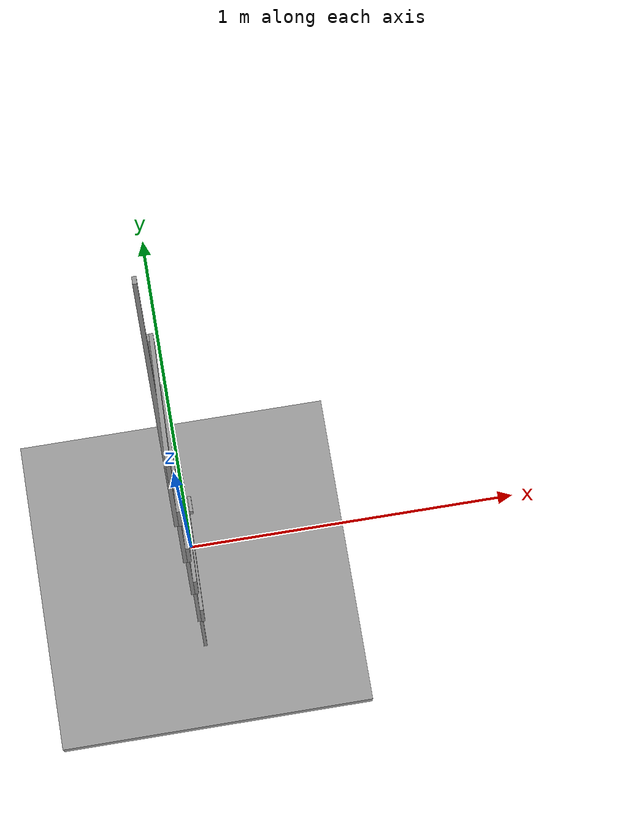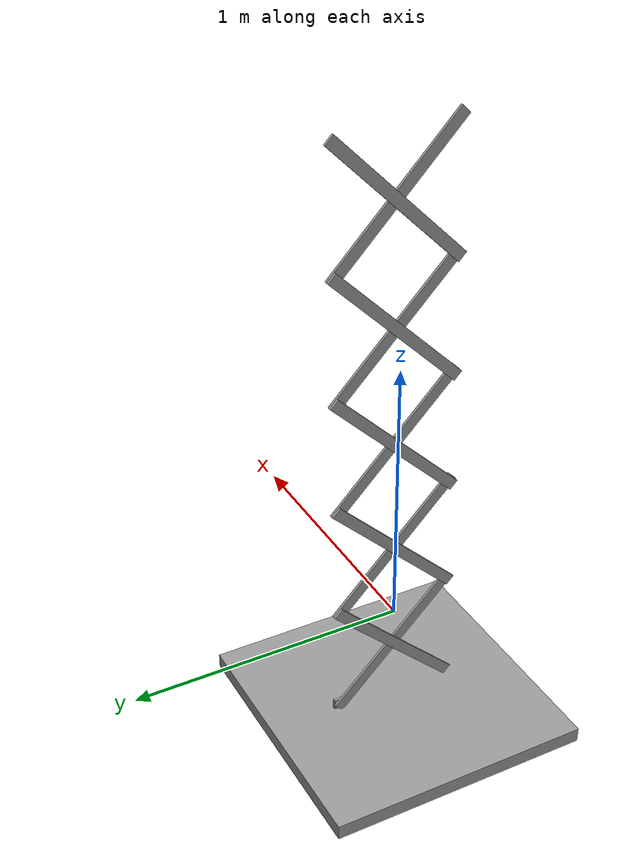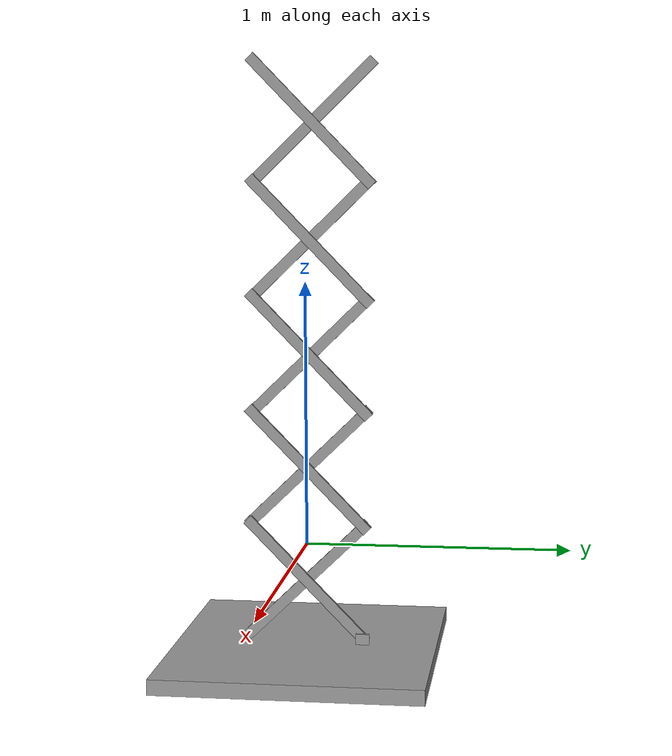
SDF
<?xml version='1.0'?>
<sdf version='1.6'>
  <model name='Robordion_leg_1'>
    <link name='link_0'>
      <pose frame=''>-0.007203 -0.002325 -0.144647 0.77 -0 0</pose>
      <inertial>
        <mass>0.00028808</mass>
        <inertia>
          <ixx>1.032e-05</ixx>
          <ixy>0</ixy>
          <ixz>0</ixz>
          <iyy>4e-08</iyy>
          <iyz>0</iyz>
          <izz>1.028e-05</izz>
        </inertia>
        <pose frame=''>0 0 0 0 -0 0</pose>
      </inertial>
      <self_collide>0</self_collide>
      <kinematic>0</kinematic>
      <visual name='visual'>
        <pose frame=''>0 0 0 0 -0 0</pose>
        <geometry>
          <box>
            <size>0.010804 0.654301 0.040827</size>
          </box>
        </geometry>
        <material>
          <lighting>1</lighting>
          <script>
            <uri>file://media/materials/scripts/gazebo.material</uri>
            <name>Gazebo/Grey</name>
          </script>
          <ambient>0.3 0.3 0.3 1</ambient>
          <diffuse>0.7 0.7 0.7 1</diffuse>
          <specular>0.01 0.01 0.01 1</specular>
          <emissive>0 0 0 1</emissive>
          <shader type='vertex'>
            <normal_map>__default__</normal_map>
          </shader>
        </material>
        <cast_shadows>1</cast_shadows>
        <transparency>0</transparency>
      </visual>
      <collision name='collision'>
        <laser_retro>0</laser_retro>
        <max_contacts>10</max_contacts>
        <pose frame=''>0 0 0 0 -0 0</pose>
        <geometry>
          <box>
            <size>0.010804 0.654301 0.040827</size>
          </box>
        </geometry>
        <surface>
          <friction>
            <ode>
              <mu>1</mu>
              <mu2>1</mu2>
              <fdir1>0 0 0</fdir1>
              <slip1>0</slip1>
              <slip2>0</slip2>
            </ode>
            <torsional>
              <coefficient>1</coefficient>
              <patch_radius>0</patch_radius>
              <surface_radius>0</surface_radius>
              <use_patch_radius>1</use_patch_radius>
              <ode>
                <slip>0</slip>
              </ode>
            </torsional>
          </friction>
          <bounce>
            <restitution_coefficient>0</restitution_coefficient>
            <threshold>1e+06</threshold>
          </bounce>
          <contact>
            <collide_without_contact>0</collide_without_contact>
            <collide_without_contact_bitmask>1</collide_without_contact_bitmask>
            <collide_bitmask>1</collide_bitmask>
            <ode>
              <soft_cfm>0</soft_cfm>
              <soft_erp>0.2</soft_erp>
              <kp>1e+13</kp>
              <kd>1</kd>
              <max_vel>0.01</max_vel>
              <min_depth>0</min_depth>
            </ode>
            <bullet>
              <split_impulse>1</split_impulse>
              <split_impulse_penetration_threshold>-0.01</split_impulse_penetration_threshold>
              <soft_cfm>0</soft_cfm>
              <soft_erp>0.2</soft_erp>
              <kp>1e+13</kp>
              <kd>1</kd>
            </bullet>
          </contact>
        </surface>
      </collision>
    </link>
    <link name='link_0_0'>
      <pose frame=''>-0.007203 -0.002325 -0.416274 0 -0 0</pose>
      <inertial>
        <mass>0.0584631</mass>
        <inertia>
          <ixx>0.00488858</ixx>
          <ixy>0</ixy>
          <ixz>0</ixz>
          <iyy>0.00488858</iyy>
          <iyz>0</iyz>
          <izz>0.00974386</izz>
        </inertia>
        <pose frame=''>0 0 0 0 -0 0</pose>
      </inertial>
      <self_collide>0</self_collide>
      <kinematic>0</kinematic>
      <visual name='visual'>
        <pose frame=''>0 0 0 0 -0 0</pose>
        <geometry>
          <box>
            <size>1 1 0.05846</size>
          </box>
        </geometry>
        <material>
          <lighting>1</lighting>
          <script>
            <uri>file://media/materials/scripts/gazebo.material</uri>
            <name>Gazebo/Grey</name>
          </script>
          <ambient>0.3 0.3 0.3 1</ambient>
          <diffuse>0.7 0.7 0.7 1</diffuse>
          <specular>0.01 0.01 0.01 1</specular>
          <emissive>0 0 0 1</emissive>
        </material>
        <cast_shadows>1</cast_shadows>
        <transparency>0</transparency>
      </visual>
      <collision name='collision'>
        <laser_retro>0</laser_retro>
        <max_contacts>10</max_contacts>
        <pose frame=''>0 0 0 0 -0 0</pose>
        <geometry>
          <box>
            <size>1 1 0.05846</size>
          </box>
        </geometry>
        <surface>
          <friction>
            <ode>
              <mu>1</mu>
              <mu2>1</mu2>
              <fdir1>0 0 0</fdir1>
              <slip1>0</slip1>
              <slip2>0</slip2>
            </ode>
            <torsional>
              <coefficient>1</coefficient>
              <patch_radius>0</patch_radius>
              <surface_radius>0</surface_radius>
              <use_patch_radius>1</use_patch_radius>
              <ode>
                <slip>0</slip>
              </ode>
            </torsional>
          </friction>
          <bounce>
            <restitution_coefficient>0</restitution_coefficient>
            <threshold>1e+06</threshold>
          </bounce>
          <contact>
            <collide_without_contact>0</collide_without_contact>
            <collide_without_contact_bitmask>1</collide_without_contact_bitmask>
            <collide_bitmask>1</collide_bitmask>
            <ode>
              <soft_cfm>0</soft_cfm>
              <soft_erp>0.2</soft_erp>
              <kp>1e+13</kp>
              <kd>1</kd>
              <max_vel>0.01</max_vel>
              <min_depth>0</min_depth>
            </ode>
            <bullet>
              <split_impulse>1</split_impulse>
              <split_impulse_penetration_threshold>-0.01</split_impulse_penetration_threshold>
              <soft_cfm>0</soft_cfm>
              <soft_erp>0.2</soft_erp>
              <kp>1e+13</kp>
              <kd>1</kd>
            </bullet>
          </contact>
        </surface>
      </collision>
    </link>
    <link name='link_0_clone'>
      <pose frame=''>0.003601 -0.002325 -0.144647 -0.800796 0 0</pose>
      <inertial>
        <mass>0.00028808</mass>
        <inertia>
          <ixx>1.032e-05</ixx>
          <ixy>0</ixy>
          <ixz>0</ixz>
          <iyy>4e-08</iyy>
          <iyz>0</iyz>
          <izz>1.028e-05</izz>
        </inertia>
        <pose frame=''>0 0 0 0 -0 0</pose>
      </inertial>
      <self_collide>0</self_collide>
      <kinematic>0</kinematic>
      <visual name='visual'>
        <pose frame=''>0 0 0 0 -0 0</pose>
        <geometry>
          <box>
            <size>0.010804 0.654301 0.040827</size>
          </box>
        </geometry>
        <material>
          <lighting>1</lighting>
          <script>
            <uri>file://media/materials/scripts/gazebo.material</uri>
            <name>Gazebo/Grey</name>
          </script>
          <ambient>0.3 0.3 0.3 1</ambient>
          <diffuse>0.7 0.7 0.7 1</diffuse>
          <specular>0.01 0.01 0.01 1</specular>
          <emissive>0 0 0 1</emissive>
          <shader type='vertex'>
            <normal_map>__default__</normal_map>
          </shader>
        </material>
        <cast_shadows>1</cast_shadows>
        <transparency>0</transparency>
      </visual>
      <collision name='collision'>
        <laser_retro>0</laser_retro>
        <max_contacts>10</max_contacts>
        <pose frame=''>0 0 0 0 -0 0</pose>
        <geometry>
          <box>
            <size>0.010804 0.654301 0.040827</size>
          </box>
        </geometry>
        <surface>
          <friction>
            <ode>
              <mu>1</mu>
              <mu2>1</mu2>
              <fdir1>0 0 0</fdir1>
              <slip1>0</slip1>
              <slip2>0</slip2>
            </ode>
            <torsional>
              <coefficient>1</coefficient>
              <patch_radius>0</patch_radius>
              <surface_radius>0</surface_radius>
              <use_patch_radius>1</use_patch_radius>
              <ode>
                <slip>0</slip>
              </ode>
            </torsional>
          </friction>
          <bounce>
            <restitution_coefficient>0</restitution_coefficient>
            <threshold>1e+06</threshold>
          </bounce>
          <contact>
            <collide_without_contact>0</collide_without_contact>
            <collide_without_contact_bitmask>1</collide_without_contact_bitmask>
            <collide_bitmask>1</collide_bitmask>
            <ode>
              <soft_cfm>0</soft_cfm>
              <soft_erp>0.2</soft_erp>
              <kp>1e+13</kp>
              <kd>1</kd>
              <max_vel>0.01</max_vel>
              <min_depth>0</min_depth>
            </ode>
            <bullet>
              <split_impulse>1</split_impulse>
              <split_impulse_penetration_threshold>-0.01</split_impulse_penetration_threshold>
              <soft_cfm>0</soft_cfm>
              <soft_erp>0.2</soft_erp>
              <kp>1e+13</kp>
              <kd>1</kd>
            </bullet>
          </contact>
        </surface>
      </collision>
    </link>
    <link name='link_0_clone_0'>
      <pose frame=''>-0.007203 0.005127 0.29548 0.77 -0 0</pose>
      <inertial>
        <mass>0.00028808</mass>
        <inertia>
          <ixx>1.032e-05</ixx>
          <ixy>0</ixy>
          <ixz>0</ixz>
          <iyy>4e-08</iyy>
          <iyz>0</iyz>
          <izz>1.028e-05</izz>
        </inertia>
        <pose frame=''>0 0 0 0 -0 0</pose>
      </inertial>
      <self_collide>0</self_collide>
      <kinematic>0</kinematic>
      <visual name='visual'>
        <pose frame=''>0 0 0 0 -0 0</pose>
        <geometry>
          <box>
            <size>0.010804 0.654301 0.040827</size>
          </box>
        </geometry>
        <material>
          <lighting>1</lighting>
          <script>
            <uri>file://media/materials/scripts/gazebo.material</uri>
            <name>Gazebo/Grey</name>
          </script>
          <ambient>0.3 0.3 0.3 1</ambient>
          <diffuse>0.7 0.7 0.7 1</diffuse>
          <specular>0.01 0.01 0.01 1</specular>
          <emissive>0 0 0 1</emissive>
          <shader type='vertex'>
            <normal_map>__default__</normal_map>
          </shader>
        </material>
        <cast_shadows>1</cast_shadows>
        <transparency>0</transparency>
      </visual>
      <collision name='collision'>
        <laser_retro>0</laser_retro>
        <max_contacts>10</max_contacts>
        <pose frame=''>0 0 0 0 -0 0</pose>
        <geometry>
          <box>
            <size>0.010804 0.654301 0.040827</size>
          </box>
        </geometry>
        <surface>
          <friction>
            <ode>
              <mu>1</mu>
              <mu2>1</mu2>
              <fdir1>0 0 0</fdir1>
              <slip1>0</slip1>
              <slip2>0</slip2>
            </ode>
            <torsional>
              <coefficient>1</coefficient>
              <patch_radius>0</patch_radius>
              <surface_radius>0</surface_radius>
              <use_patch_radius>1</use_patch_radius>
              <ode>
                <slip>0</slip>
              </ode>
            </torsional>
          </friction>
          <bounce>
            <restitution_coefficient>0</restitution_coefficient>
            <threshold>1e+06</threshold>
          </bounce>
          <contact>
            <collide_without_contact>0</collide_without_contact>
            <collide_without_contact_bitmask>1</collide_without_contact_bitmask>
            <collide_bitmask>1</collide_bitmask>
            <ode>
              <soft_cfm>0</soft_cfm>
              <soft_erp>0.2</soft_erp>
              <kp>1e+13</kp>
              <kd>1</kd>
              <max_vel>0.01</max_vel>
              <min_depth>0</min_depth>
            </ode>
            <bullet>
              <split_impulse>1</split_impulse>
              <split_impulse_penetration_threshold>-0.01</split_impulse_penetration_threshold>
              <soft_cfm>0</soft_cfm>
              <soft_erp>0.2</soft_erp>
              <kp>1e+13</kp>
              <kd>1</kd>
            </bullet>
          </contact>
        </surface>
      </collision>
    </link>
    <link name='link_0_clone_0_clone'>
      <pose frame=''>-0.007203 0.012117 0.720098 0.77 -0 0</pose>
      <inertial>
        <mass>0.00028808</mass>
        <inertia>
          <ixx>1.032e-05</ixx>
          <ixy>0</ixy>
          <ixz>0</ixz>
          <iyy>4e-08</iyy>
          <iyz>0</iyz>
          <izz>1.028e-05</izz>
        </inertia>
        <pose frame=''>0 0 0 0 -0 0</pose>
      </inertial>
      <self_collide>0</self_collide>
      <kinematic>0</kinematic>
      <visual name='visual'>
        <pose frame=''>0 0 0 0 -0 0</pose>
        <geometry>
          <box>
            <size>0.010804 0.654301 0.040827</size>
          </box>
        </geometry>
        <material>
          <lighting>1</lighting>
          <script>
            <uri>file://media/materials/scripts/gazebo.material</uri>
            <name>Gazebo/Grey</name>
          </script>
          <ambient>0.3 0.3 0.3 1</ambient>
          <diffuse>0.7 0.7 0.7 1</diffuse>
          <specular>0.01 0.01 0.01 1</specular>
          <emissive>0 0 0 1</emissive>
          <shader type='vertex'>
            <normal_map>__default__</normal_map>
          </shader>
        </material>
        <cast_shadows>1</cast_shadows>
        <transparency>0</transparency>
      </visual>
      <collision name='collision'>
        <laser_retro>0</laser_retro>
        <max_contacts>10</max_contacts>
        <pose frame=''>0 0 0 0 -0 0</pose>
        <geometry>
          <box>
            <size>0.010804 0.654301 0.040827</size>
          </box>
        </geometry>
        <surface>
          <friction>
            <ode>
              <mu>1</mu>
              <mu2>1</mu2>
              <fdir1>0 0 0</fdir1>
              <slip1>0</slip1>
              <slip2>0</slip2>
            </ode>
            <torsional>
              <coefficient>1</coefficient>
              <patch_radius>0</patch_radius>
              <surface_radius>0</surface_radius>
              <use_patch_radius>1</use_patch_radius>
              <ode>
                <slip>0</slip>
              </ode>
            </torsional>
          </friction>
          <bounce>
            <restitution_coefficient>0</restitution_coefficient>
            <threshold>1e+06</threshold>
          </bounce>
          <contact>
            <collide_without_contact>0</collide_without_contact>
            <collide_without_contact_bitmask>1</collide_without_contact_bitmask>
            <collide_bitmask>1</collide_bitmask>
            <ode>
              <soft_cfm>0</soft_cfm>
              <soft_erp>0.2</soft_erp>
              <kp>1e+13</kp>
              <kd>1</kd>
              <max_vel>0.01</max_vel>
              <min_depth>0</min_depth>
            </ode>
            <bullet>
              <split_impulse>1</split_impulse>
              <split_impulse_penetration_threshold>-0.01</split_impulse_penetration_threshold>
              <soft_cfm>0</soft_cfm>
              <soft_erp>0.2</soft_erp>
              <kp>1e+13</kp>
              <kd>1</kd>
            </bullet>
          </contact>
        </surface>
      </collision>
    </link>
    <link name='link_0_clone_0_clone_clone'>
      <pose frame=''>-0.007234 0.01887 1.1597 0.77 -0 0</pose>
      <inertial>
        <mass>0.00028808</mass>
        <inertia>
          <ixx>1.032e-05</ixx>
          <ixy>0</ixy>
          <ixz>0</ixz>
          <iyy>4e-08</iyy>
          <iyz>0</iyz>
          <izz>1.028e-05</izz>
        </inertia>
        <pose frame=''>0 0 0 0 -0 0</pose>
      </inertial>
      <self_collide>0</self_collide>
      <kinematic>0</kinematic>
      <visual name='visual'>
        <pose frame=''>0 0 0 0 -0 0</pose>
        <geometry>
          <box>
            <size>0.010804 0.654301 0.040827</size>
          </box>
        </geometry>
        <material>
          <lighting>1</lighting>
          <script>
            <uri>file://media/materials/scripts/gazebo.material</uri>
            <name>Gazebo/Grey</name>
          </script>
          <ambient>0.3 0.3 0.3 1</ambient>
          <diffuse>0.7 0.7 0.7 1</diffuse>
          <specular>0.01 0.01 0.01 1</specular>
          <emissive>0 0 0 1</emissive>
          <shader type='vertex'>
            <normal_map>__default__</normal_map>
          </shader>
        </material>
        <cast_shadows>1</cast_shadows>
        <transparency>0</transparency>
      </visual>
      <collision name='collision'>
        <laser_retro>0</laser_retro>
        <max_contacts>10</max_contacts>
        <pose frame=''>0 0 0 0 -0 0</pose>
        <geometry>
          <box>
            <size>0.010804 0.654301 0.040827</size>
          </box>
        </geometry>
        <surface>
          <friction>
            <ode>
              <mu>1</mu>
              <mu2>1</mu2>
              <fdir1>0 0 0</fdir1>
              <slip1>0</slip1>
              <slip2>0</slip2>
            </ode>
            <torsional>
              <coefficient>1</coefficient>
              <patch_radius>0</patch_radius>
              <surface_radius>0</surface_radius>
              <use_patch_radius>1</use_patch_radius>
              <ode>
                <slip>0</slip>
              </ode>
            </torsional>
          </friction>
          <bounce>
            <restitution_coefficient>0</restitution_coefficient>
            <threshold>1e+06</threshold>
          </bounce>
          <contact>
            <collide_without_contact>0</collide_without_contact>
            <collide_without_contact_bitmask>1</collide_without_contact_bitmask>
            <collide_bitmask>1</collide_bitmask>
            <ode>
              <soft_cfm>0</soft_cfm>
              <soft_erp>0.2</soft_erp>
              <kp>1e+13</kp>
              <kd>1</kd>
              <max_vel>0.01</max_vel>
              <min_depth>0</min_depth>
            </ode>
            <bullet>
              <split_impulse>1</split_impulse>
              <split_impulse_penetration_threshold>-0.01</split_impulse_penetration_threshold>
              <soft_cfm>0</soft_cfm>
              <soft_erp>0.2</soft_erp>
              <kp>1e+13</kp>
              <kd>1</kd>
            </bullet>
          </contact>
        </surface>
      </collision>
    </link>
    <link name='link_0_clone_0_clone_clone_clone'>
      <pose frame=''>-0.007234 0.025984 1.58764 0.77 -0 0</pose>
      <inertial>
        <mass>0.00028808</mass>
        <inertia>
          <ixx>1.032e-05</ixx>
          <ixy>0</ixy>
          <ixz>0</ixz>
          <iyy>4e-08</iyy>
          <iyz>0</iyz>
          <izz>1.028e-05</izz>
        </inertia>
        <pose frame=''>0 0 0 0 -0 0</pose>
      </inertial>
      <self_collide>0</self_collide>
      <kinematic>0</kinematic>
      <visual name='visual'>
        <pose frame=''>0 0 0 0 -0 0</pose>
        <geometry>
          <box>
            <size>0.010804 0.654301 0.040827</size>
          </box>
        </geometry>
        <material>
          <lighting>1</lighting>
          <script>
            <uri>file://media/materials/scripts/gazebo.material</uri>
            <name>Gazebo/Grey</name>
          </script>
          <ambient>0.3 0.3 0.3 1</ambient>
          <diffuse>0.7 0.7 0.7 1</diffuse>
          <specular>0.01 0.01 0.01 1</specular>
          <emissive>0 0 0 1</emissive>
          <shader type='vertex'>
            <normal_map>__default__</normal_map>
          </shader>
        </material>
        <cast_shadows>1</cast_shadows>
        <transparency>0</transparency>
      </visual>
      <collision name='collision'>
        <laser_retro>0</laser_retro>
        <max_contacts>10</max_contacts>
        <pose frame=''>0 0 0 0 -0 0</pose>
        <geometry>
          <box>
            <size>0.010804 0.654301 0.040827</size>
          </box>
        </geometry>
        <surface>
          <friction>
            <ode>
              <mu>1</mu>
              <mu2>1</mu2>
              <fdir1>0 0 0</fdir1>
              <slip1>0</slip1>
              <slip2>0</slip2>
            </ode>
            <torsional>
              <coefficient>1</coefficient>
              <patch_radius>0</patch_radius>
              <surface_radius>0</surface_radius>
              <use_patch_radius>1</use_patch_radius>
              <ode>
                <slip>0</slip>
              </ode>
            </torsional>
          </friction>
          <bounce>
            <restitution_coefficient>0</restitution_coefficient>
            <threshold>1e+06</threshold>
          </bounce>
          <contact>
            <collide_without_contact>0</collide_without_contact>
            <collide_without_contact_bitmask>1</collide_without_contact_bitmask>
            <collide_bitmask>1</collide_bitmask>
            <ode>
              <soft_cfm>0</soft_cfm>
              <soft_erp>0.2</soft_erp>
              <kp>1e+13</kp>
              <kd>1</kd>
              <max_vel>0.01</max_vel>
              <min_depth>0</min_depth>
            </ode>
            <bullet>
              <split_impulse>1</split_impulse>
              <split_impulse_penetration_threshold>-0.01</split_impulse_penetration_threshold>
              <soft_cfm>0</soft_cfm>
              <soft_erp>0.2</soft_erp>
              <kp>1e+13</kp>
              <kd>1</kd>
            </bullet>
          </contact>
        </surface>
      </collision>
    </link>
    <link name='link_0_clone_clone'>
      <pose frame=''>0.003601 0.005127 0.288801 -0.800796 0 0</pose>
      <inertial>
        <mass>0.00028808</mass>
        <inertia>
          <ixx>1.032e-05</ixx>
          <ixy>0</ixy>
          <ixz>0</ixz>
          <iyy>4e-08</iyy>
          <iyz>0</iyz>
          <izz>1.028e-05</izz>
        </inertia>
        <pose frame=''>0 0 0 0 -0 0</pose>
      </inertial>
      <self_collide>0</self_collide>
      <kinematic>0</kinematic>
      <visual name='visual'>
        <pose frame=''>0 0 0 0 -0 0</pose>
        <geometry>
          <box>
            <size>0.010804 0.654301 0.040827</size>
          </box>
        </geometry>
        <material>
          <lighting>1</lighting>
          <script>
            <uri>file://media/materials/scripts/gazebo.material</uri>
            <name>Gazebo/Grey</name>
          </script>
          <ambient>0.3 0.3 0.3 1</ambient>
          <diffuse>0.7 0.7 0.7 1</diffuse>
          <specular>0.01 0.01 0.01 1</specular>
          <emissive>0 0 0 1</emissive>
          <shader type='vertex'>
            <normal_map>__default__</normal_map>
          </shader>
        </material>
        <cast_shadows>1</cast_shadows>
        <transparency>0</transparency>
      </visual>
      <collision name='collision'>
        <laser_retro>0</laser_retro>
        <max_contacts>10</max_contacts>
        <pose frame=''>0 0 0 0 -0 0</pose>
        <geometry>
          <box>
            <size>0.010804 0.654301 0.040827</size>
          </box>
        </geometry>
        <surface>
          <friction>
            <ode>
              <mu>1</mu>
              <mu2>1</mu2>
              <fdir1>0 0 0</fdir1>
              <slip1>0</slip1>
              <slip2>0</slip2>
            </ode>
            <torsional>
              <coefficient>1</coefficient>
              <patch_radius>0</patch_radius>
              <surface_radius>0</surface_radius>
              <use_patch_radius>1</use_patch_radius>
              <ode>
                <slip>0</slip>
              </ode>
            </torsional>
          </friction>
          <bounce>
            <restitution_coefficient>0</restitution_coefficient>
            <threshold>1e+06</threshold>
          </bounce>
          <contact>
            <collide_without_contact>0</collide_without_contact>
            <collide_without_contact_bitmask>1</collide_without_contact_bitmask>
            <collide_bitmask>1</collide_bitmask>
            <ode>
              <soft_cfm>0</soft_cfm>
              <soft_erp>0.2</soft_erp>
              <kp>1e+13</kp>
              <kd>1</kd>
              <max_vel>0.01</max_vel>
              <min_depth>0</min_depth>
            </ode>
            <bullet>
              <split_impulse>1</split_impulse>
              <split_impulse_penetration_threshold>-0.01</split_impulse_penetration_threshold>
              <soft_cfm>0</soft_cfm>
              <soft_erp>0.2</soft_erp>
              <kp>1e+13</kp>
              <kd>1</kd>
            </bullet>
          </contact>
        </surface>
      </collision>
    </link>
    <link name='link_0_clone_clone_0'>
      <pose frame=''>0.003601 0.012116 0.726777 -0.800796 0 0</pose>
      <inertial>
        <mass>0.00028808</mass>
        <inertia>
          <ixx>1.032e-05</ixx>
          <ixy>0</ixy>
          <ixz>0</ixz>
          <iyy>4e-08</iyy>
          <iyz>0</iyz>
          <izz>1.028e-05</izz>
        </inertia>
        <pose frame=''>0 0 0 0 -0 0</pose>
      </inertial>
      <self_collide>0</self_collide>
      <kinematic>0</kinematic>
      <visual name='visual'>
        <pose frame=''>0 0 0 0 -0 0</pose>
        <geometry>
          <box>
            <size>0.010804 0.654301 0.040827</size>
          </box>
        </geometry>
        <material>
          <lighting>1</lighting>
          <script>
            <uri>file://media/materials/scripts/gazebo.material</uri>
            <name>Gazebo/Grey</name>
          </script>
          <ambient>0.3 0.3 0.3 1</ambient>
          <diffuse>0.7 0.7 0.7 1</diffuse>
          <specular>0.01 0.01 0.01 1</specular>
          <emissive>0 0 0 1</emissive>
          <shader type='vertex'>
            <normal_map>__default__</normal_map>
          </shader>
        </material>
        <cast_shadows>1</cast_shadows>
        <transparency>0</transparency>
      </visual>
      <collision name='collision'>
        <laser_retro>0</laser_retro>
        <max_contacts>10</max_contacts>
        <pose frame=''>0 0 0 0 -0 0</pose>
        <geometry>
          <box>
            <size>0.010804 0.654301 0.040827</size>
          </box>
        </geometry>
        <surface>
          <friction>
            <ode>
              <mu>1</mu>
              <mu2>1</mu2>
              <fdir1>0 0 0</fdir1>
              <slip1>0</slip1>
              <slip2>0</slip2>
            </ode>
            <torsional>
              <coefficient>1</coefficient>
              <patch_radius>0</patch_radius>
              <surface_radius>0</surface_radius>
              <use_patch_radius>1</use_patch_radius>
              <ode>
                <slip>0</slip>
              </ode>
            </torsional>
          </friction>
          <bounce>
            <restitution_coefficient>0</restitution_coefficient>
            <threshold>1e+06</threshold>
          </bounce>
          <contact>
            <collide_without_contact>0</collide_without_contact>
            <collide_without_contact_bitmask>1</collide_without_contact_bitmask>
            <collide_bitmask>1</collide_bitmask>
            <ode>
              <soft_cfm>0</soft_cfm>
              <soft_erp>0.2</soft_erp>
              <kp>1e+13</kp>
              <kd>1</kd>
              <max_vel>0.01</max_vel>
              <min_depth>0</min_depth>
            </ode>
            <bullet>
              <split_impulse>1</split_impulse>
              <split_impulse_penetration_threshold>-0.01</split_impulse_penetration_threshold>
              <soft_cfm>0</soft_cfm>
              <soft_erp>0.2</soft_erp>
              <kp>1e+13</kp>
              <kd>1</kd>
            </bullet>
          </contact>
        </surface>
      </collision>
    </link>
    <link name='link_0_clone_clone_0_clone'>
      <pose frame=''>0.00357 0.01887 1.15302 -0.800796 0 0</pose>
      <inertial>
        <mass>0.00028808</mass>
        <inertia>
          <ixx>1.032e-05</ixx>
          <ixy>0</ixy>
          <ixz>0</ixz>
          <iyy>4e-08</iyy>
          <iyz>0</iyz>
          <izz>1.028e-05</izz>
        </inertia>
        <pose frame=''>0 0 0 0 -0 0</pose>
      </inertial>
      <self_collide>0</self_collide>
      <kinematic>0</kinematic>
      <visual name='visual'>
        <pose frame=''>0 0 0 0 -0 0</pose>
        <geometry>
          <box>
            <size>0.010804 0.654301 0.040827</size>
          </box>
        </geometry>
        <material>
          <lighting>1</lighting>
          <script>
            <uri>file://media/materials/scripts/gazebo.material</uri>
            <name>Gazebo/Grey</name>
          </script>
          <ambient>0.3 0.3 0.3 1</ambient>
          <diffuse>0.7 0.7 0.7 1</diffuse>
          <specular>0.01 0.01 0.01 1</specular>
          <emissive>0 0 0 1</emissive>
          <shader type='vertex'>
            <normal_map>__default__</normal_map>
          </shader>
        </material>
        <cast_shadows>1</cast_shadows>
        <transparency>0</transparency>
      </visual>
      <collision name='collision'>
        <laser_retro>0</laser_retro>
        <max_contacts>10</max_contacts>
        <pose frame=''>0 0 0 0 -0 0</pose>
        <geometry>
          <box>
            <size>0.010804 0.654301 0.040827</size>
          </box>
        </geometry>
        <surface>
          <friction>
            <ode>
              <mu>1</mu>
              <mu2>1</mu2>
              <fdir1>0 0 0</fdir1>
              <slip1>0</slip1>
              <slip2>0</slip2>
            </ode>
            <torsional>
              <coefficient>1</coefficient>
              <patch_radius>0</patch_radius>
              <surface_radius>0</surface_radius>
              <use_patch_radius>1</use_patch_radius>
              <ode>
                <slip>0</slip>
              </ode>
            </torsional>
          </friction>
          <bounce>
            <restitution_coefficient>0</restitution_coefficient>
            <threshold>1e+06</threshold>
          </bounce>
          <contact>
            <collide_without_contact>0</collide_without_contact>
            <collide_without_contact_bitmask>1</collide_without_contact_bitmask>
            <collide_bitmask>1</collide_bitmask>
            <ode>
              <soft_cfm>0</soft_cfm>
              <soft_erp>0.2</soft_erp>
              <kp>1e+13</kp>
              <kd>1</kd>
              <max_vel>0.01</max_vel>
              <min_depth>0</min_depth>
            </ode>
            <bullet>
              <split_impulse>1</split_impulse>
              <split_impulse_penetration_threshold>-0.01</split_impulse_penetration_threshold>
              <soft_cfm>0</soft_cfm>
              <soft_erp>0.2</soft_erp>
              <kp>1e+13</kp>
              <kd>1</kd>
            </bullet>
          </contact>
        </surface>
      </collision>
    </link>
    <link name='link_0_clone_clone_0_clone_clone'>
      <pose frame=''>0.00357 0.025752 1.59415 -0.800796 0 0</pose>
      <inertial>
        <mass>0.00028808</mass>
        <inertia>
          <ixx>1.032e-05</ixx>
          <ixy>0</ixy>
          <ixz>0</ixz>
          <iyy>4e-08</iyy>
          <iyz>0</iyz>
          <izz>1.028e-05</izz>
        </inertia>
        <pose frame=''>0 0 0 0 -0 0</pose>
      </inertial>
      <self_collide>0</self_collide>
      <kinematic>0</kinematic>
      <visual name='visual'>
        <pose frame=''>0 0 0 0 -0 0</pose>
        <geometry>
          <box>
            <size>0.010804 0.654301 0.040827</size>
          </box>
        </geometry>
        <material>
          <lighting>1</lighting>
          <script>
            <uri>file://media/materials/scripts/gazebo.material</uri>
            <name>Gazebo/Grey</name>
          </script>
          <ambient>0.3 0.3 0.3 1</ambient>
          <diffuse>0.7 0.7 0.7 1</diffuse>
          <specular>0.01 0.01 0.01 1</specular>
          <emissive>0 0 0 1</emissive>
          <shader type='vertex'>
            <normal_map>__default__</normal_map>
          </shader>
        </material>
        <cast_shadows>1</cast_shadows>
        <transparency>0</transparency>
      </visual>
      <collision name='collision'>
        <laser_retro>0</laser_retro>
        <max_contacts>10</max_contacts>
        <pose frame=''>0 0 0 0 -0 0</pose>
        <geometry>
          <box>
            <size>0.010804 0.654301 0.040827</size>
          </box>
        </geometry>
        <surface>
          <friction>
            <ode>
              <mu>1</mu>
              <mu2>1</mu2>
              <fdir1>0 0 0</fdir1>
              <slip1>0</slip1>
              <slip2>0</slip2>
            </ode>
            <torsional>
              <coefficient>1</coefficient>
              <patch_radius>0</patch_radius>
              <surface_radius>0</surface_radius>
              <use_patch_radius>1</use_patch_radius>
              <ode>
                <slip>0</slip>
              </ode>
            </torsional>
          </friction>
          <bounce>
            <restitution_coefficient>0</restitution_coefficient>
            <threshold>1e+06</threshold>
          </bounce>
          <contact>
            <collide_without_contact>0</collide_without_contact>
            <collide_without_contact_bitmask>1</collide_without_contact_bitmask>
            <collide_bitmask>1</collide_bitmask>
            <ode>
              <soft_cfm>0</soft_cfm>
              <soft_erp>0.2</soft_erp>
              <kp>1e+13</kp>
              <kd>1</kd>
              <max_vel>0.01</max_vel>
              <min_depth>0</min_depth>
            </ode>
            <bullet>
              <split_impulse>1</split_impulse>
              <split_impulse_penetration_threshold>-0.01</split_impulse_penetration_threshold>
              <soft_cfm>0</soft_cfm>
              <soft_erp>0.2</soft_erp>
              <kp>1e+13</kp>
              <kd>1</kd>
            </bullet>
          </contact>
        </surface>
      </collision>
    </link>
    <link name='link_0_clone_clone_1_clone'>
      <pose frame=''>0.014405 0.214205 -0.366629 0 -0 0</pose>
      <inertial>
        <mass>2.27771e-05</mass>
        <inertia>
          <ixx>8.24361e-09</ixx>
          <ixy>0</ixy>
          <ixz>0</ixz>
          <iyy>3.16261e-09</iyy>
          <iyz>0</iyz>
          <izz>5.081e-09</izz>
        </inertia>
        <pose frame=''>0 0 0 0 -0 0</pose>
      </inertial>
      <self_collide>0</self_collide>
      <kinematic>0</kinematic>
      <visual name='visual'>
        <pose frame=''>0 0 0 0 -0 0</pose>
        <geometry>
          <box>
            <size>0.010804 0.051733 0.040827</size>
          </box>
        </geometry>
        <material>
          <lighting>1</lighting>
          <script>
            <uri>file://media/materials/scripts/gazebo.material</uri>
            <name>Gazebo/Grey</name>
          </script>
          <ambient>0.3 0.3 0.3 1</ambient>
          <diffuse>0.7 0.7 0.7 1</diffuse>
          <specular>0.01 0.01 0.01 1</specular>
          <emissive>0 0 0 1</emissive>
          <shader type='vertex'>
            <normal_map>__default__</normal_map>
          </shader>
        </material>
        <cast_shadows>1</cast_shadows>
        <transparency>0</transparency>
      </visual>
      <collision name='collision'>
        <laser_retro>0</laser_retro>
        <max_contacts>10</max_contacts>
        <pose frame=''>0 0 0 0 -0 0</pose>
        <geometry>
          <box>
            <size>0.010804 0.051733 0.040827</size>
          </box>
        </geometry>
        <surface>
          <friction>
            <ode>
              <mu>1</mu>
              <mu2>1</mu2>
              <fdir1>0 0 0</fdir1>
              <slip1>0</slip1>
              <slip2>0</slip2>
            </ode>
            <torsional>
              <coefficient>1</coefficient>
              <patch_radius>0</patch_radius>
              <surface_radius>0</surface_radius>
              <use_patch_radius>1</use_patch_radius>
              <ode>
                <slip>0</slip>
              </ode>
            </torsional>
          </friction>
          <bounce>
            <restitution_coefficient>0</restitution_coefficient>
            <threshold>1e+06</threshold>
          </bounce>
          <contact>
            <collide_without_contact>0</collide_without_contact>
            <collide_without_contact_bitmask>1</collide_without_contact_bitmask>
            <collide_bitmask>1</collide_bitmask>
            <ode>
              <soft_cfm>0</soft_cfm>
              <soft_erp>0.2</soft_erp>
              <kp>1e+13</kp>
              <kd>1</kd>
              <max_vel>0.01</max_vel>
              <min_depth>0</min_depth>
            </ode>
            <bullet>
              <split_impulse>1</split_impulse>
              <split_impulse_penetration_threshold>-0.01</split_impulse_penetration_threshold>
              <soft_cfm>0</soft_cfm>
              <soft_erp>0.2</soft_erp>
              <kp>1e+13</kp>
              <kd>1</kd>
            </bullet>
          </contact>
        </surface>
      </collision>
    </link>
    <joint name='base_slider' type='prismatic'>
      <parent>link_0_0</parent>
      <child>link_0_clone_clone_1_clone</child>
      <pose frame=''>0 0 0 0 -0 0</pose>
      <axis>
        <xyz>0 1 0</xyz>
        <use_parent_model_frame>0</use_parent_model_frame>
        <limit>
          <lower>-1.79769e+308</lower>
          <upper>1.79769e+308</upper>
          <effort>-1</effort>
          <velocity>-1</velocity>
        </limit>
        <dynamics>
          <spring_reference>0</spring_reference>
          <spring_stiffness>0</spring_stiffness>
          <damping>0</damping>
          <friction>0</friction>
        </dynamics>
      </axis>
      <physics>
        <ode>
          <limit>
            <cfm>0</cfm>
            <erp>0.2</erp>
          </limit>
          <suspension>
            <cfm>0</cfm>
            <erp>0.2</erp>
          </suspension>
        </ode>
      </physics>
    </joint>
    <joint name='rev_A_0' type='revolute'>
      <parent>link_0_0</parent>
      <child>link_0</child>
      <pose frame=''>0 -0.31 0 0 -0 0</pose>
      <axis>
        <xyz>1 0 0</xyz>
        <use_parent_model_frame>0</use_parent_model_frame>
        <limit>
          <lower>-1.57</lower>
          <upper>0.8</upper>
          <effort>-1</effort>
          <velocity>-1</velocity>
        </limit>
        <dynamics>
          <spring_reference>0</spring_reference>
          <spring_stiffness>0</spring_stiffness>
          <damping>0</damping>
          <friction>0</friction>
        </dynamics>
      </axis>
      <physics>
        <ode>
          <limit>
            <cfm>0</cfm>
            <erp>0.2</erp>
          </limit>
          <suspension>
            <cfm>0</cfm>
            <erp>0.2</erp>
          </suspension>
        </ode>
      </physics>
    </joint>
    <joint name='rev_A_1' type='revolute'>
      <parent>link_0</parent>
      <child>link_0_clone_clone</child>
      <pose frame=''>0 0.31 0 0 -0 0</pose>
      <axis>
        <xyz>1 0 0</xyz>
        <use_parent_model_frame>0</use_parent_model_frame>
        <limit>
          <lower>-0.8</lower>
          <upper>1.57</upper>
          <effort>-1</effort>
          <velocity>-1</velocity>
        </limit>
        <dynamics>
          <spring_reference>0</spring_reference>
          <spring_stiffness>0</spring_stiffness>
          <damping>0</damping>
          <friction>0</friction>
        </dynamics>
      </axis>
      <physics>
        <ode>
          <limit>
            <cfm>0</cfm>
            <erp>0.2</erp>
          </limit>
          <suspension>
            <cfm>0</cfm>
            <erp>0.2</erp>
          </suspension>
        </ode>
      </physics>
    </joint>
    <joint name='rev_A_2' type='revolute'>
      <parent>link_0_clone_clone</parent>
      <child>link_0_clone_0_clone</child>
      <pose frame=''>0 -0.31 0 0 -0 0</pose>
      <axis>
        <xyz>1 0 0</xyz>
        <use_parent_model_frame>0</use_parent_model_frame>
        <limit>
          <lower>-1.57</lower>
          <upper>0.8</upper>
          <effort>-1</effort>
          <velocity>-1</velocity>
        </limit>
        <dynamics>
          <spring_reference>0</spring_reference>
          <spring_stiffness>0</spring_stiffness>
          <damping>0</damping>
          <friction>0</friction>
        </dynamics>
      </axis>
      <physics>
        <ode>
          <limit>
            <cfm>0</cfm>
            <erp>0.2</erp>
          </limit>
          <suspension>
            <cfm>0</cfm>
            <erp>0.2</erp>
          </suspension>
        </ode>
      </physics>
    </joint>
    <joint name='rev_A_3' type='revolute'>
      <parent>link_0_clone_0_clone</parent>
      <child>link_0_clone_clone_0_clone</child>
      <pose frame=''>0 0.31 0 0 -0 0</pose>
      <axis>
        <xyz>1 0 0</xyz>
        <use_parent_model_frame>0</use_parent_model_frame>
        <limit>
          <lower>-0.8</lower>
          <upper>1.57</upper>
          <effort>-1</effort>
          <velocity>-1</velocity>
        </limit>
        <dynamics>
          <spring_reference>0</spring_reference>
          <spring_stiffness>0</spring_stiffness>
          <damping>0</damping>
          <friction>0</friction>
        </dynamics>
      </axis>
      <physics>
        <ode>
          <limit>
            <cfm>0</cfm>
            <erp>0.2</erp>
          </limit>
          <suspension>
            <cfm>0</cfm>
            <erp>0.2</erp>
          </suspension>
        </ode>
      </physics>
    </joint>
    <joint name='rev_A_4' type='revolute'>
      <parent>link_0_clone_clone_0_clone</parent>
      <child>link_0_clone_0_clone_clone_clone</child>
      <pose frame=''>0 -0.31 0 0 -0 0</pose>
      <axis>
        <xyz>1 0 0</xyz>
        <use_parent_model_frame>0</use_parent_model_frame>
        <limit>
          <lower>-1.57</lower>
          <upper>0.8</upper>
          <effort>-1</effort>
          <velocity>-1</velocity>
        </limit>
        <dynamics>
          <spring_reference>0</spring_reference>
          <spring_stiffness>0</spring_stiffness>
          <damping>0</damping>
          <friction>0</friction>
        </dynamics>
      </axis>
      <physics>
        <ode>
          <limit>
            <cfm>0</cfm>
            <erp>0.2</erp>
          </limit>
          <suspension>
            <cfm>0</cfm>
            <erp>0.2</erp>
          </suspension>
        </ode>
      </physics>
    </joint>
    <joint name='rev_B_0' type='revolute'>
      <parent>link_0_clone_clone_1_clone</parent>
      <child>link_0_clone</child>
      <pose frame=''>0 0.31 0 0 -0 0</pose>
      <axis>
        <xyz>1 0 0</xyz>
        <use_parent_model_frame>0</use_parent_model_frame>
        <limit>
          <lower>-0.8</lower>
          <upper>1.57</upper>
          <effort>-1</effort>
          <velocity>-1</velocity>
        </limit>
        <dynamics>
          <spring_reference>0</spring_reference>
          <spring_stiffness>0</spring_stiffness>
          <damping>0</damping>
          <friction>0</friction>
        </dynamics>
      </axis>
      <physics>
        <ode>
          <limit>
            <cfm>0</cfm>
            <erp>0.2</erp>
          </limit>
          <suspension>
            <cfm>0</cfm>
            <erp>0.2</erp>
          </suspension>
        </ode>
      </physics>
    </joint>
    <joint name='rev_B_1' type='revolute'>
      <parent>link_0_clone</parent>
      <child>link_0_clone_0</child>
      <pose frame=''>0 -0.31 0 0 -0 0</pose>
      <axis>
        <xyz>1 0 0</xyz>
        <use_parent_model_frame>0</use_parent_model_frame>
        <limit>
          <lower>-1.57</lower>
          <upper>0.8</upper>
          <effort>-1</effort>
          <velocity>-1</velocity>
        </limit>
        <dynamics>
          <spring_reference>0</spring_reference>
          <spring_stiffness>0</spring_stiffness>
          <damping>0</damping>
          <friction>0</friction>
        </dynamics>
      </axis>
      <physics>
        <ode>
          <limit>
            <cfm>0</cfm>
            <erp>0.2</erp>
          </limit>
          <suspension>
            <cfm>0</cfm>
            <erp>0.2</erp>
          </suspension>
        </ode>
      </physics>
    </joint>
    <joint name='rev_B_2' type='revolute'>
      <parent>link_0_clone_0</parent>
      <child>link_0_clone_clone_0</child>
      <pose frame=''>0 0.31 0 0 -0 0</pose>
      <axis>
        <xyz>1 0 0</xyz>
        <use_parent_model_frame>0</use_parent_model_frame>
        <limit>
          <lower>-0.8</lower>
          <upper>1.57</upper>
          <effort>-1</effort>
          <velocity>-1</velocity>
        </limit>
        <dynamics>
          <spring_reference>0</spring_reference>
          <spring_stiffness>0</spring_stiffness>
          <damping>0</damping>
          <friction>0</friction>
        </dynamics>
      </axis>
      <physics>
        <ode>
          <limit>
            <cfm>0</cfm>
            <erp>0.2</erp>
          </limit>
          <suspension>
            <cfm>0</cfm>
            <erp>0.2</erp>
          </suspension>
        </ode>
      </physics>
    </joint>
    <joint name='rev_B_3' type='revolute'>
      <parent>link_0_clone_clone_0</parent>
      <child>link_0_clone_0_clone_clone</child>
      <pose frame=''>0 -0.31 0 0 -0 0</pose>
      <axis>
        <xyz>1 0 0</xyz>
        <use_parent_model_frame>0</use_parent_model_frame>
        <limit>
          <lower>-1.57</lower>
          <upper>0.8</upper>
          <effort>-1</effort>
          <velocity>-1</velocity>
        </limit>
        <dynamics>
          <spring_reference>0</spring_reference>
          <spring_stiffness>0</spring_stiffness>
          <damping>0</damping>
          <friction>0</friction>
        </dynamics>
      </axis>
      <physics>
        <ode>
          <limit>
            <cfm>0</cfm>
            <erp>0.2</erp>
          </limit>
          <suspension>
            <cfm>0</cfm>
            <erp>0.2</erp>
          </suspension>
        </ode>
      </physics>
    </joint>
    <joint name='rev_B_4' type='revolute'>
      <parent>link_0_clone_0_clone_clone</parent>
      <child>link_0_clone_clone_0_clone_clone</child>
      <pose frame=''>0 0.31 0 0 -0 0</pose>
      <axis>
        <xyz>1 0 0</xyz>
        <use_parent_model_frame>0</use_parent_model_frame>
        <limit>
          <lower>-0.8</lower>
          <upper>1.57</upper>
          <effort>-1</effort>
          <velocity>-1</velocity>
        </limit>
        <dynamics>
          <spring_reference>0</spring_reference>
          <spring_stiffness>0</spring_stiffness>
          <damping>0</damping>
          <friction>0</friction>
        </dynamics>
      </axis>
      <physics>
        <ode>
          <limit>
            <cfm>0</cfm>
            <erp>0.2</erp>
          </limit>
          <suspension>
            <cfm>0</cfm>
            <erp>0.2</erp>
          </suspension>
        </ode>
      </physics>
    </joint>
    <joint name='rev_pin_1' type='revolute'>
      <parent>link_0</parent>
      <child>link_0_clone</child>
      <pose frame=''>0 0 0 0 -0 0</pose>
      <axis>
        <xyz>1 0 0</xyz>
        <use_parent_model_frame>0</use_parent_model_frame>
        <limit>
          <lower>-1.57</lower>
          <upper>1.57</upper>
          <effort>-1</effort>
          <velocity>-1</velocity>
        </limit>
        <dynamics>
          <spring_reference>0</spring_reference>
          <spring_stiffness>0</spring_stiffness>
          <damping>0</damping>
          <friction>0</friction>
        </dynamics>
      </axis>
      <physics>
        <ode>
          <limit>
            <cfm>0</cfm>
            <erp>0.2</erp>
          </limit>
          <suspension>
            <cfm>0</cfm>
            <erp>0.2</erp>
          </suspension>
        </ode>
      </physics>
    </joint>
    <joint name='rev_pin_2' type='revolute'>
      <parent>link_0_clone_0</parent>
      <child>link_0_clone_clone</child>
      <pose frame=''>0 0 0 0 -0 0</pose>
      <axis>
        <xyz>1 0 0</xyz>
        <use_parent_model_frame>0</use_parent_model_frame>
        <limit>
          <lower>-1.57</lower>
          <upper>1.57</upper>
          <effort>-1</effort>
          <velocity>-1</velocity>
        </limit>
        <dynamics>
          <spring_reference>0</spring_reference>
          <spring_stiffness>0</spring_stiffness>
          <damping>0</damping>
          <friction>0</friction>
        </dynamics>
      </axis>
      <physics>
        <ode>
          <limit>
            <cfm>0</cfm>
            <erp>0.2</erp>
          </limit>
          <suspension>
            <cfm>0</cfm>
            <erp>0.2</erp>
          </suspension>
        </ode>
      </physics>
    </joint>
    <joint name='rev_pin_3' type='revolute'>
      <parent>link_0_clone_0_clone</parent>
      <child>link_0_clone_clone_0</child>
      <pose frame=''>0 0 0 0 -0 0</pose>
      <axis>
        <xyz>1 0 0</xyz>
        <use_parent_model_frame>0</use_parent_model_frame>
        <limit>
          <lower>-1.57</lower>
          <upper>1.57</upper>
          <effort>-1</effort>
          <velocity>-1</velocity>
        </limit>
        <dynamics>
          <spring_reference>0</spring_reference>
          <spring_stiffness>0</spring_stiffness>
          <damping>0</damping>
          <friction>0</friction>
        </dynamics>
      </axis>
      <physics>
        <ode>
          <limit>
            <cfm>0</cfm>
            <erp>0.2</erp>
          </limit>
          <suspension>
            <cfm>0</cfm>
            <erp>0.2</erp>
          </suspension>
        </ode>
      </physics>
    </joint>
    <joint name='rev_pin_4' type='revolute'>
      <parent>link_0_clone_0_clone_clone</parent>
      <child>link_0_clone_clone_0_clone</child>
      <pose frame=''>0 0 0 0 -0 0</pose>
      <axis>
        <xyz>1 0 0</xyz>
        <use_parent_model_frame>0</use_parent_model_frame>
        <limit>
          <lower>-1.57</lower>
          <upper>1.57</upper>
          <effort>-1</effort>
          <velocity>-1</velocity>
        </limit>
        <dynamics>
          <spring_reference>0</spring_reference>
          <spring_stiffness>0</spring_stiffness>
          <damping>0</damping>
          <friction>0</friction>
        </dynamics>
      </axis>
      <physics>
        <ode>
          <limit>
            <cfm>0</cfm>
            <erp>0.2</erp>
          </limit>
          <suspension>
            <cfm>0</cfm>
            <erp>0.2</erp>
          </suspension>
        </ode>
      </physics>
    </joint>
    <joint name='rev_pin_5' type='revolute'>
      <parent>link_0_clone_0_clone_clone_clone</parent>
      <child>link_0_clone_clone_0_clone_clone</child>
      <pose frame=''>0 0 0 0 -0 0</pose>
      <axis>
        <xyz>1 0 0</xyz>
        <use_parent_model_frame>0</use_parent_model_frame>
        <limit>
          <lower>-1.57</lower>
          <upper>1.57</upper>
          <effort>-1</effort>
          <velocity>-1</velocity>
        </limit>
        <dynamics>
          <spring_reference>0</spring_reference>
          <spring_stiffness>0</spring_stiffness>
          <damping>0</damping>
          <friction>0</friction>
        </dynamics>
      </axis>
      <physics>
        <ode>
          <limit>
            <cfm>0</cfm>
            <erp>0.2</erp>
          </limit>
          <suspension>
            <cfm>0</cfm>
            <erp>0.2</erp>
          </suspension>
        </ode>
      </physics>
    </joint>
    <static>0</static>
    <allow_auto_disable>1</allow_auto_disable>
  </model>
</sdf>
